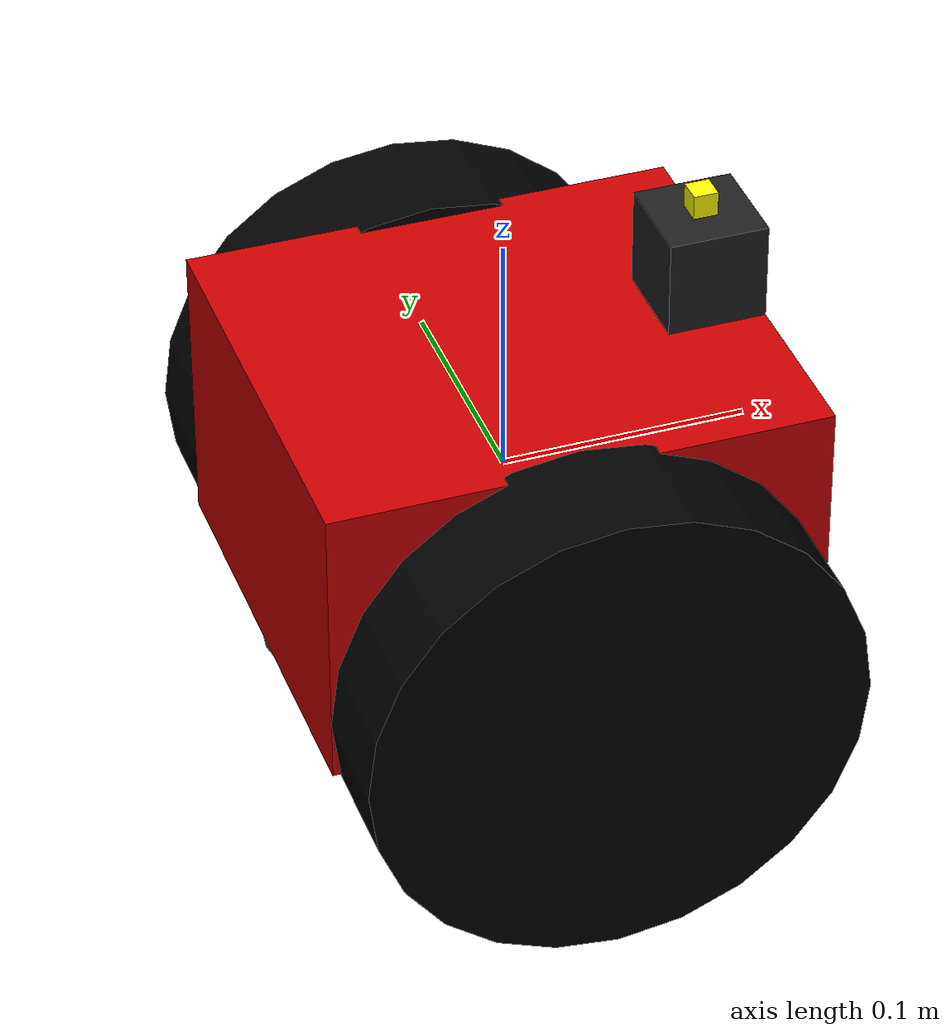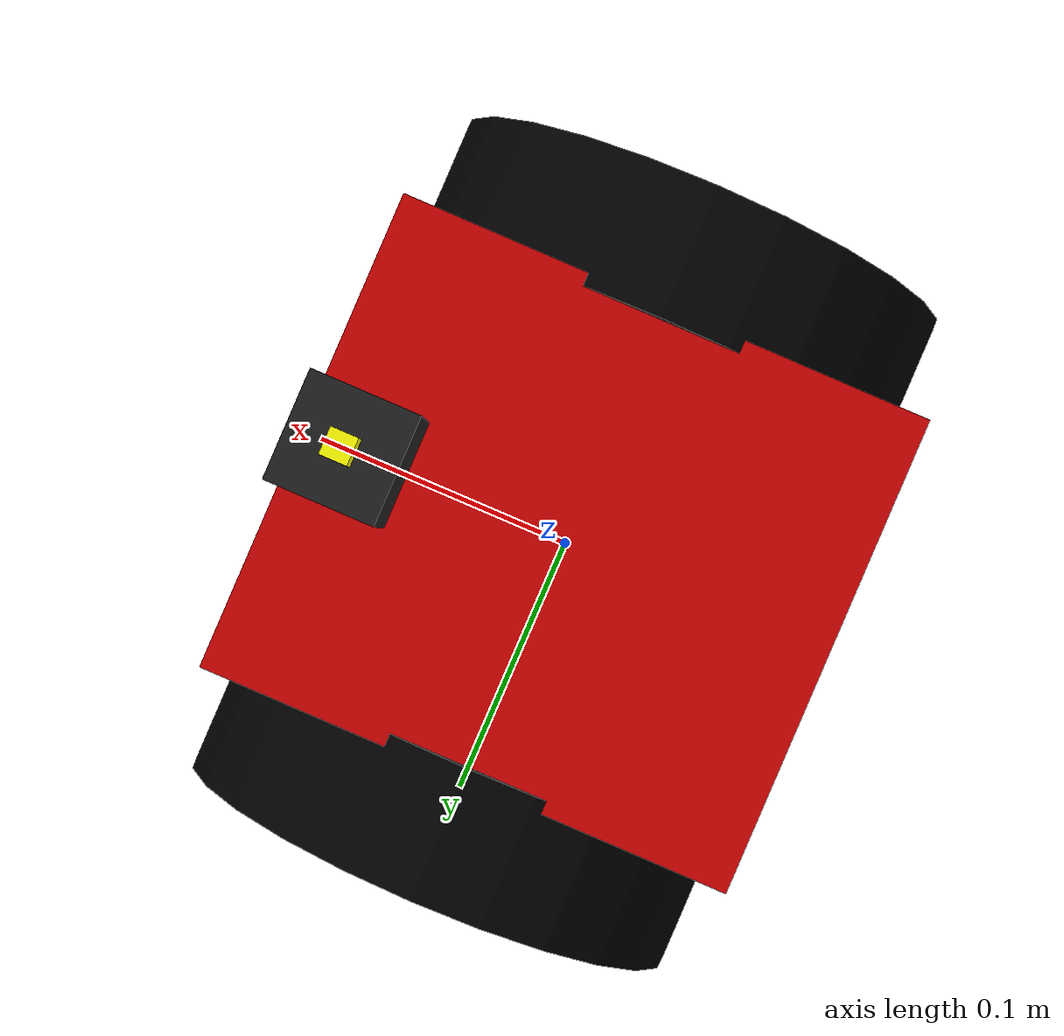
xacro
<?xml version='1.0'?>
<robot xmlns:xacro="http://www.ros.org/wiki/xacro" name="my_robot">
    <!-- includes -->
    <xacro:include filename="$(find my_best_robot_simulation_setup)/urdf/materials.xacro"/>
    <xacro:include filename="$(find my_best_robot_simulation_setup)/urdf/wheel.xacro"/>
    <xacro:include filename="$(find my_best_robot_simulation_setup)/urdf/inertia.xacro"/>
    <xacro:include filename="$(find my_best_robot_simulation_setup)/urdf/caster.xacro"/>
    <xacro:include filename="$(find my_best_robot_simulation_setup)/urdf/robot_model.gazebo"/>

    <!-- parameters -->
    <xacro:property name="base_length" value="0.2"/>
    <xacro:property name="base_width"  value="0.18"/>
    <xacro:property name="base_height" value="0.12"/>
    <xacro:property name="base_mass" value="5"/>

    <xacro:property name="wheel_radius" value="0.045"/>
    <xacro:property name="wheel_width" value="0.02"/>
    <xacro:property name="wheel_mass" value="0.5"/>

    <xacro:property name="x_offset" value="0.01"/>
    <xacro:property name="y_offset" value="0.02"/>
    <xacro:property name="z_offset" value="0.025"/>

    <xacro:property name="sphere_radius" value="${wheel_radius - z_offset}"/>

    <xacro:property name="camera_length" value="0.04"/>
    <xacro:property name="camera_width"  value="0.04"/>
    <xacro:property name="camera_height" value="0.04"/>
    <xacro:property name="camera_mass" value="0.2"/>

    <xacro:property name="lidar_length" value="0.01"/>
    <xacro:property name="lidar_width"  value="0.01"/>
    <xacro:property name="lidar_height" value="0.01"/>
    <xacro:property name="lidar_mass" value="0.2"/>

    <!-- ros2 control -->
    <ros2_control name="DiffBotSystem" type="system">
        <hardware>
            <plugin>gz_ros2_control/GazeboSimSystem</plugin>
        </hardware>
        <joint name="wheel_left_joint">
            <command_interface name="velocity"/>
            <state_interface name="velocity"/>
            <state_interface name="effort"/>
        </joint>

        <joint name="wheel_right_joint">
            <command_interface name="velocity"/>
            <state_interface name="velocity"/>
            <state_interface name="effort"/>
        </joint>
    </ros2_control>

    <!-- dummy for base inertia -->
    <link name="dummy"/>

    <joint name="base_joint" type="fixed">
        <parent link="dummy"/>
        <child link="base_link"/>
        <origin xyz="0.0 0.0 0.0" rpy="0.0 0.0 0.0"/>
    </joint>

    <!-- base -->
    <link name='base_link'>
        <pose> 0 0 0 0 0 0 </pose>
        <visual name='base_visual'>
            <origin xyz="0.0 0.0 0.0" rpy="0.0 0.0 0.0"/>
            <geometry>
                <box size="${base_length} ${base_width} ${base_height}"/>
            </geometry>
            <material name="red"/>
        </visual>
        <collision>
            <origin xyz="0.0 0.0 0." rpy="0.0 0.0 0.0" />
            <geometry>
                <box size="${base_length} ${base_width} ${base_height}"/>
            </geometry>
        </collision>
        <xacro:inertial_box mass="${base_mass}" x="${base_length}" y="${base_width}" z="${base_height}">
            <origin xyz="0 0 0" rpy="0 0 0"/>
        </xacro:inertial_box>

        <xacro:caster n="1" x="${base_length*0.4}" y="0" z="${-base_height/2}" radius="${sphere_radius}">
        </xacro:caster>

        <xacro:caster n="2" x="${-base_length*0.4}" y="0" z="${-base_height/2}" radius="${sphere_radius}">
        </xacro:caster>
    </link>

    <!-- wheels -->
    <xacro:wheel side="left" x="0" y="${base_width/2 + y_offset}" z="${-base_height/2 + z_offset}">
        <xacro:inertial_cylinder mass="${wheel_mass}" length="${wheel_width}" radius="${wheel_radius}">
            <origin xyz="0 0 0" rpy="0 0 0"/>
        </xacro:inertial_cylinder>
    </xacro:wheel>

    <xacro:wheel side="right" x="0" y="${-base_width/2 - y_offset}" z="${-base_height/2 + z_offset}">
        <xacro:inertial_cylinder mass="${wheel_mass}" length="${wheel_width}" radius="${wheel_radius}">
            <origin xyz="0 0 0" rpy="0 0 0"/>
        </xacro:inertial_cylinder>
    </xacro:wheel>

    <!-- camera -->
    <link name="camera_link">
        <visual name="camera_link_visual">
            <origin xyz="0 0 0" rpy=" 0 0 0"/>
            <geometry>
            <box size="${camera_length} ${camera_width} ${camera_height}"/>
            </geometry>
        </visual>

        <collision name="camera_link_colision">
            <origin xyz="0 0 0" rpy=" 0 0 0"/>
            <geometry>
               <box size="${camera_length} ${camera_width} ${camera_height}"/>
            </geometry>
        </collision>

        <inertial name="camera_link_inertial">
            <origin xyz="0 0 0" rpy=" 0 0 0"/>
                <mass value="${camera_mass}"/>
                <inertia ixx="1e-3" ixy="0" ixz="0"
                    iyy="1e-3" iyz="0"
                    izz="1e-3"/>
        </inertial>
    </link>

    <joint name="camera_joint" type="fixed">
        <origin xyz="${base_length/2 - camera_length/2} 0 ${base_height/2 + camera_height/2}" rpy="0 0 0"/>
        <parent link="base_link"/>
        <child link="camera_link"/>
    </joint>

    <!-- lidar -->
    <link name="lidar_link">
        <visual name="lidar_visual">
            <geometry>
                <box size="${lidar_length} ${lidar_width} ${lidar_height}" />
            </geometry>

            <origin xyz="0 0 0" rpy="0 0 0" />
            <material name="yellow" />
        </visual>

        <collision>
            <origin xyz="0 0 0" rpy="0 0 0"/>
            <geometry>
                <box size="${lidar_length} ${lidar_width} ${lidar_height}"/>
            </geometry>
        </collision>

        <inertial>
            <mass value="${lidar_mass}"/>
            <inertia ixx="1e-3" ixy="0" ixz="0"
                iyy="1e-3" iyz="0"
                izz="1e-3"/>
        </inertial>
    </link>

    <joint name="lidar_joint" type="fixed">
        <origin xyz="0 0 ${camera_height/2 + lidar_height/2}" rpy="0 0 0"/>
        <child link="lidar_link"/>
        <parent link="camera_link"/>
    </joint>
</robot>

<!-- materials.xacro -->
<robot
    xmlns:xacro="http://www.ros.org/wiki/xacro"
    name="materials">
    <material name="black">
        <color rgba="0.0 0.0 0.0 1.0"/>
    </material>

    <material name="blue">
        <color rgba="0.0 0.0 0.8 1.0"/>
    </material>

    <material name="green">
        <color rgba="${30/255} ${255/255} ${30/255} 1.0"/>
    </material>

    <material name="gray">
        <color rgba="0.2 0.2 0.2 1.0"/>
    </material>

    <material name="burgundy">
        <color rgba="${128/255} ${0/255} ${32/255} 1.0"/>
    </material>

    <material name="burgundy_warm">
        <color rgba="${140/255} ${20/255} ${40/255} 1.0"/>
    </material>

    <material name="burgundy_dark">
        <color rgba="${90/255} ${0/255} ${25/255} 1.0"/>
    </material>

    <material name="orange">
        <color rgba="${255/255} ${108/255} ${10/255} 1.0"/>
    </material>

    <material name="brown">
        <color rgba="${222/255} ${207/255} ${195/255} 1.0"/>
    </material>

    <material name="red">
        <color rgba="0.8 0.0 0.0 1.0"/>
    </material>

    <material name="white">
        <color rgba="1.0 1.0 1.0 1.0"/>
    </material>

    <material name="yellow">
        <color rgba="1.0 1.0 0.0 1.0"/>
    </material>
</robot>

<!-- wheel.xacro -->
<robot name="diff_drive" xmlns:xacro="http://www.ros.org/wiki/xacro">
<xacro:macro name="wheel" params="side x y z">
    <link name='wheel_${side}'>
        <visual name='wheel_${side}_visual'>
            <origin xyz="0 0 0" rpy=" 0 0 0"/>
            <geometry>
                <cylinder length="0.05" radius="0.1"/>
            </geometry>
            <material name="black"/>
        </visual>
        <xacro:inertial_cylinder mass="0.1" length="0.1" radius="0.05">
            <origin xyz="0 0 0" rpy="0 0 0"/>
        </xacro:inertial_cylinder>
        <collision>
            <origin xyz="0 0 0" rpy="0 0 0"/>
                <geometry>
                    <cylinder radius="0.1" length="0.05"/>
                </geometry>
        </collision>
    </link>
    <joint name="wheel_${side}_joint" type="continuous">
        <origin xyz="${x} ${y} ${z}" rpy="${-pi/2} 0 0"/>
        <child link="wheel_${side}"/>
        <axis xyz="0 0 1"/>
        <parent link="base_link"/>
        <limit effort="50" velocity="100"/>
        <joint_properties damping="0" friction="0.01"/>
    </joint>
    <transmission name="wheel_${side}_transmission">
        <type>transmission_interface/SimpleTransmission</type>
        <joint name="wheel_${side}_joint">
            <hardwareInterface>hardware_interface/EffortJointInterface</hardwareInterface>
        </joint>
        <actuator name="wheel_${side}_motor">
            <hardwareInterface>hardware_interface/EffortJointInterface</hardwareInterface>
            <mechanicalReduction>1</mechanicalReduction>
        </actuator>
    </transmission>
</xacro:macro>
</robot>

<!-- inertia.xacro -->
<robot xmlns:xacro="http://www.ros.org/wiki/xacro">

    <xacro:macro name="inertial_sphere" params="mass radius *origin">
        <inertial>
            <xacro:insert_block name="origin"/>
            <mass value="${mass}" />
            <inertia ixx="${(2/5) * mass * (radius*radius)}" ixy="0.0" ixz="0.0"
                    iyy="${(2/5) * mass * (radius*radius)}" iyz="0.0"
                    izz="${(2/5) * mass * (radius*radius)}" />
        </inertial>
    </xacro:macro>

    <xacro:macro name="inertial_box" params="mass x y z *origin">
        <inertial>
            <xacro:insert_block name="origin"/>
            <mass value="${mass}" />
            <inertia ixx="${(1/12) * mass * (y*y+z*z)}" ixy="0.0" ixz="0.0"
                    iyy="${(1/12) * mass * (x*x+z*z)}" iyz="0.0"
                    izz="${(1/12) * mass * (x*x+y*y)}" />
        </inertial>
    </xacro:macro>

    <xacro:macro name="inertial_cylinder" params="mass length radius *origin">
        <inertial>
            <xacro:insert_block name="origin"/>
            <mass value="${mass}" />
            <inertia ixx="${(1/12) * mass * (3*radius*radius + length*length)}" ixy="0.0" ixz="0.0"
                    iyy="${(1/12) * mass * (3*radius*radius + length*length)}" iyz="0.0"
                    izz="${(1/2) * mass * radius * radius}" />
        </inertial>
    </xacro:macro>

</robot>

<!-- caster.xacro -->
<robot xmlns:xacro="http://www.ros.org/wiki/xacro" name="caster">
    <xacro:macro name="caster" params="n x y z radius">
        <collision name='caster_collision_${n}'>
            <origin xyz="${x} ${y} ${z}" rpy="0.0 0.0 0.0" />
            <geometry>
                <sphere radius="${radius}" />
            </geometry>
            <surface>
                <friction>
                    <ode>
                        <mu>0</mu>
                        <mu2>0</mu2>
                        <slip1>1.0</slip1>
                        <slip2>1.0</slip2>
                    </ode>
                </friction>
            </surface>
        </collision>
        <visual name='caster_visual_${n}'>
            <origin xyz="${x} ${y} ${z}" rpy="0.0 0.0 0.0" />
            <geometry>
                <sphere radius="${radius}" />
            </geometry>
            <material name="gray" />
        </visual>
    </xacro:macro>
</robot>
